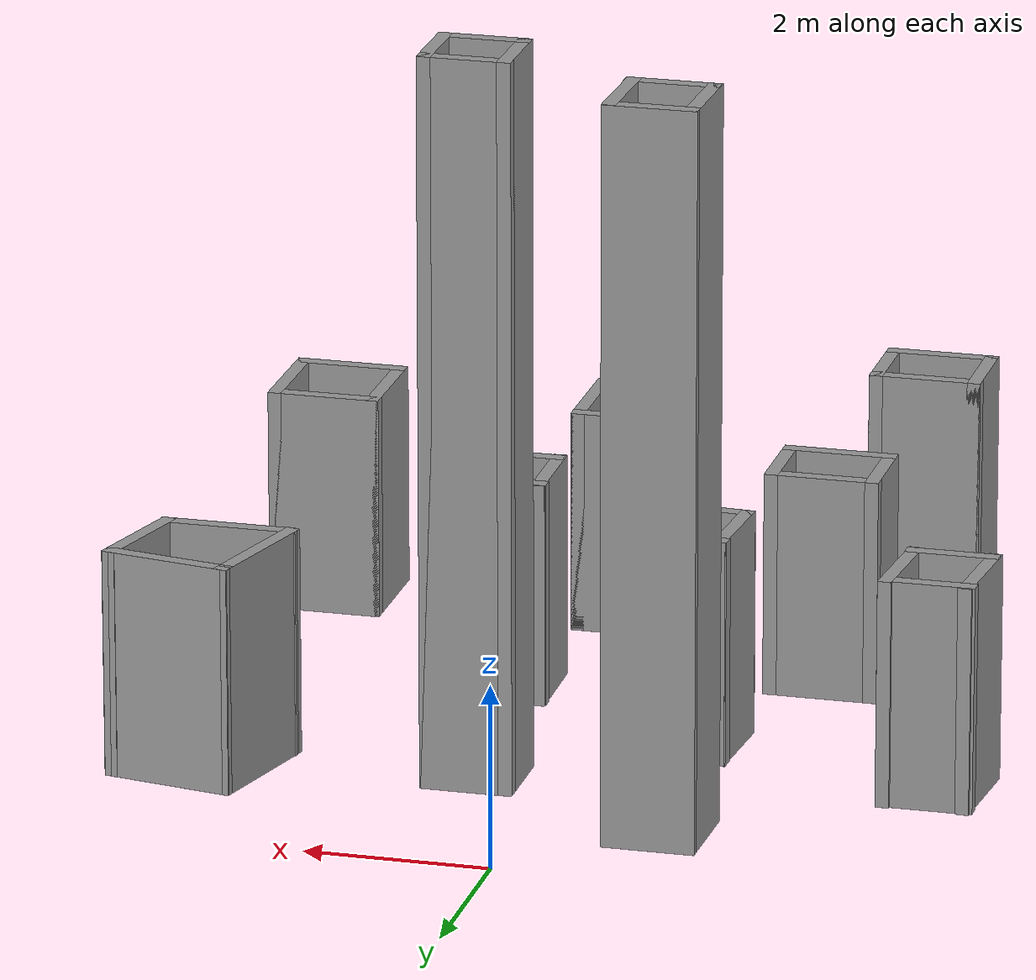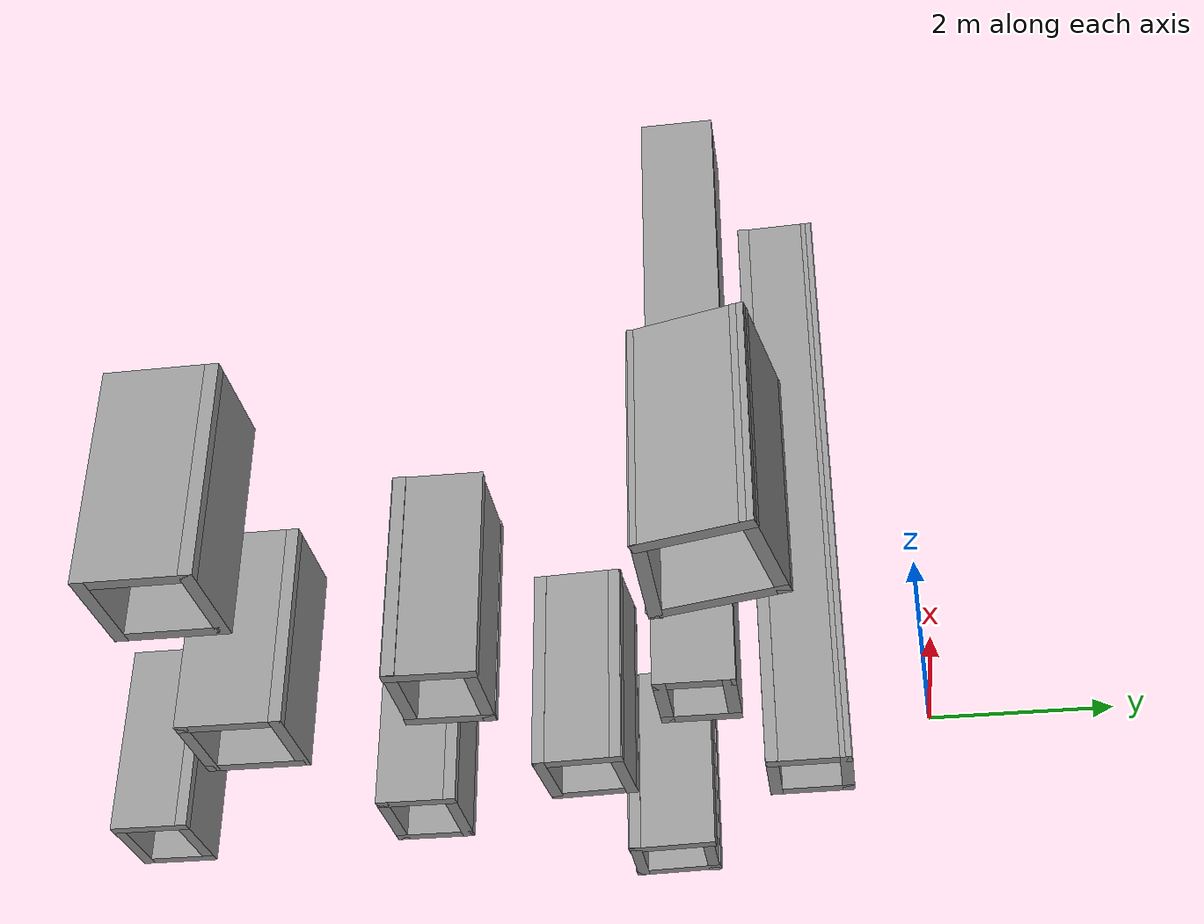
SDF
<?xml version='1.0'?>
<sdf version='1.7'>
  <model name='my_world.world'>
    <pose>0.054354 -5.13393 0 0 -0 0</pose>
    <link name='Wall_0'>
      <collision name='Wall_0_Collision'>
        <geometry>
          <box>
            <size>1 0.15 8</size>
          </box>
        </geometry>
        <pose>0 0 4 0 -0 0</pose>
      </collision>
      <visual name='Wall_0_Visual'>
        <pose>0 0 4 0 -0 0</pose>
        <geometry>
          <box>
            <size>1 0.15 8</size>
          </box>
        </geometry>
        <material>
          <script>
            <uri>file://media/materials/scripts/gazebo.material</uri>
            <name>Gazebo/Grey</name>
          </script>
          <ambient>1 1 1 1</ambient>
        </material>
        <meta>
          <layer>0</layer>
        </meta>
      </visual>
      <pose>-1.49935 3.31393 0 0 -0 0</pose>
    </link>
    <link name='Wall_1'>
      <collision name='Wall_1_Collision'>
        <geometry>
          <box>
            <size>1.01023 0.15 8</size>
          </box>
        </geometry>
        <pose>0 0 4 0 -0 0</pose>
      </collision>
      <visual name='Wall_1_Visual'>
        <pose>0 0 4 0 -0 0</pose>
        <geometry>
          <box>
            <size>1.01023 0.15 8</size>
          </box>
        </geometry>
        <material>
          <script>
            <uri>file://media/materials/scripts/gazebo.material</uri>
            <name>Gazebo/Grey</name>
          </script>
          <ambient>1 1 1 1</ambient>
        </material>
        <meta>
          <layer>0</layer>
        </meta>
      </visual>
      <pose>-1.07435 3.74393 0 0 -0 1.54754</pose>
    </link>
    <link name='Wall_15'>
      <collision name='Wall_15_Collision'>
        <geometry>
          <box>
            <size>1.05777 0.15 2.5</size>
          </box>
        </geometry>
        <pose>0 0 1.25 0 -0 0</pose>
      </collision>
      <visual name='Wall_15_Visual'>
        <pose>0 0 1.25 0 -0 0</pose>
        <geometry>
          <box>
            <size>1.05777 0.15 2.5</size>
          </box>
        </geometry>
        <material>
          <script>
            <uri>file://media/materials/scripts/gazebo.material</uri>
            <name>Gazebo/Grey</name>
          </script>
          <ambient>1 1 1 1</ambient>
        </material>
        <meta>
          <layer>0</layer>
        </meta>
      </visual>
      <pose>-1.64061 1.12835 0 0 -0 -1.64235</pose>
    </link>
    <link name='Wall_16'>
      <collision name='Wall_16_Collision'>
        <geometry>
          <box>
            <size>1.10596 0.15 2.5</size>
          </box>
        </geometry>
        <pose>0 0 1.25 0 -0 0</pose>
      </collision>
      <visual name='Wall_16_Visual'>
        <pose>0 0 1.25 0 -0 0</pose>
        <geometry>
          <box>
            <size>1.10596 0.15 2.5</size>
          </box>
        </geometry>
        <material>
          <script>
            <uri>file://media/materials/scripts/gazebo.material</uri>
            <name>Gazebo/Grey</name>
          </script>
          <ambient>1 1 1 1</ambient>
        </material>
        <meta>
          <layer>0</layer>
        </meta>
      </visual>
      <pose>-1.19618 0.630228 0 0 -0 -0.067889</pose>
    </link>
    <link name='Wall_17'>
      <collision name='Wall_17_Collision'>
        <geometry>
          <box>
            <size>1.06989 0.15 2.5</size>
          </box>
        </geometry>
        <pose>0 0 1.25 0 -0 0</pose>
      </collision>
      <visual name='Wall_17_Visual'>
        <pose>0 0 1.25 0 -0 0</pose>
        <geometry>
          <box>
            <size>1.06989 0.15 2.5</size>
          </box>
        </geometry>
        <material>
          <script>
            <uri>file://media/materials/scripts/gazebo.material</uri>
            <name>Gazebo/Grey</name>
          </script>
          <ambient>1 1 1 1</ambient>
        </material>
        <meta>
          <layer>0</layer>
        </meta>
      </visual>
      <pose>-0.693331 1.06998 0 0 -0 1.51431</pose>
    </link>
    <link name='Wall_18'>
      <collision name='Wall_18_Collision'>
        <geometry>
          <box>
            <size>1.10596 0.15 2.5</size>
          </box>
        </geometry>
        <pose>0 0 1.25 0 -0 0</pose>
      </collision>
      <visual name='Wall_18_Visual'>
        <pose>0 0 1.25 0 -0 0</pose>
        <geometry>
          <box>
            <size>1.10596 0.15 2.5</size>
          </box>
        </geometry>
        <material>
          <script>
            <uri>file://media/materials/scripts/gazebo.material</uri>
            <name>Gazebo/Grey</name>
          </script>
          <ambient>1 1 1 1</ambient>
        </material>
        <meta>
          <layer>0</layer>
        </meta>
      </visual>
      <pose>-1.14424 1.54865 0 0 -0 3.0737</pose>
    </link>
    <link name='Wall_2'>
      <collision name='Wall_2_Collision'>
        <geometry>
          <box>
            <size>1 0.15 8</size>
          </box>
        </geometry>
        <pose>0 0 4 0 -0 0</pose>
      </collision>
      <visual name='Wall_2_Visual'>
        <pose>0 0 4 0 -0 0</pose>
        <geometry>
          <box>
            <size>1 0.15 8</size>
          </box>
        </geometry>
        <material>
          <script>
            <uri>file://media/materials/scripts/gazebo.material</uri>
            <name>Gazebo/Grey</name>
          </script>
          <ambient>1 1 1 1</ambient>
        </material>
        <meta>
          <layer>0</layer>
        </meta>
      </visual>
      <pose>-1.48935 4.18393 0 0 -0 3.14159</pose>
    </link>
    <link name='Wall_20'>
      <collision name='Wall_20_Collision'>
        <geometry>
          <box>
            <size>1.14571 0.15 2.5</size>
          </box>
        </geometry>
        <pose>0 0 1.25 0 -0 0</pose>
      </collision>
      <visual name='Wall_20_Visual'>
        <pose>0 0 1.25 0 -0 0</pose>
        <geometry>
          <box>
            <size>1.14571 0.15 2.5</size>
          </box>
        </geometry>
        <material>
          <script>
            <uri>file://media/materials/scripts/gazebo.material</uri>
            <name>Gazebo/Grey</name>
          </script>
          <ambient>1 1 1 1</ambient>
        </material>
        <meta>
          <layer>0</layer>
        </meta>
      </visual>
      <pose>-4.44976 1.85747 0 0 -0 -1.64903</pose>
    </link>
    <link name='Wall_21'>
      <collision name='Wall_21_Collision'>
        <geometry>
          <box>
            <size>1 0.15 2.5</size>
          </box>
        </geometry>
        <pose>0 0 1.25 0 -0 0</pose>
      </collision>
      <visual name='Wall_21_Visual'>
        <pose>0 0 1.25 0 -0 0</pose>
        <geometry>
          <box>
            <size>1 0.15 2.5</size>
          </box>
        </geometry>
        <material>
          <script>
            <uri>file://media/materials/scripts/gazebo.material</uri>
            <name>Gazebo/Grey</name>
          </script>
          <ambient>1 1 1 1</ambient>
        </material>
        <meta>
          <layer>0</layer>
        </meta>
      </visual>
      <pose>-4.0507 1.37411 0 0 -0 0</pose>
    </link>
    <link name='Wall_22'>
      <collision name='Wall_22_Collision'>
        <geometry>
          <box>
            <size>1.14571 0.15 2.5</size>
          </box>
        </geometry>
        <pose>0 0 1.25 0 -0 0</pose>
      </collision>
      <visual name='Wall_22_Visual'>
        <pose>0 0 1.25 0 -0 0</pose>
        <geometry>
          <box>
            <size>1.14571 0.15 2.5</size>
          </box>
        </geometry>
        <material>
          <script>
            <uri>file://media/materials/scripts/gazebo.material</uri>
            <name>Gazebo/Grey</name>
          </script>
          <ambient>1 1 1 1</ambient>
        </material>
        <meta>
          <layer>0</layer>
        </meta>
      </visual>
      <pose>-3.59976 1.85747 0 0 -0 1.49256</pose>
    </link>
    <link name='Wall_23'>
      <collision name='Wall_23_Collision'>
        <geometry>
          <box>
            <size>1 0.15 2.5</size>
          </box>
        </geometry>
        <pose>0 0 1.25 0 -0 0</pose>
      </collision>
      <visual name='Wall_23_Visual'>
        <pose>0 0 1.25 0 -0 0</pose>
        <geometry>
          <box>
            <size>1 0.15 2.5</size>
          </box>
        </geometry>
        <material>
          <script>
            <uri>file://media/materials/scripts/gazebo.material</uri>
            <name>Gazebo/Grey</name>
          </script>
          <ambient>1 1 1 1</ambient>
        </material>
        <meta>
          <layer>0</layer>
        </meta>
      </visual>
      <pose>-4.01179 2.32787 0 0 -0 3.14159</pose>
    </link>
    <link name='Wall_25'>
      <collision name='Wall_25_Collision'>
        <geometry>
          <box>
            <size>1.04615 0.15 2.5</size>
          </box>
        </geometry>
        <pose>0 0 1.25 0 -0 0</pose>
      </collision>
      <visual name='Wall_25_Visual'>
        <pose>0 0 1.25 0 -0 0</pose>
        <geometry>
          <box>
            <size>1.04615 0.15 2.5</size>
          </box>
        </geometry>
        <material>
          <script>
            <uri>file://media/materials/scripts/gazebo.material</uri>
            <name>Gazebo/Grey</name>
          </script>
          <ambient>1 1 1 1</ambient>
        </material>
        <meta>
          <layer>0</layer>
        </meta>
      </visual>
      <pose>0.692776 -0.156425 0 0 -0 -1.55632</pose>
    </link>
    <link name='Wall_256'>
      <collision name='Wall_256_Collision'>
        <geometry>
          <box>
            <size>1.5 0.15 2.5</size>
          </box>
        </geometry>
        <pose>0 0 1.25 0 -0 0</pose>
      </collision>
      <visual name='Wall_256_Visual'>
        <pose>0 0 1.25 0 -0 0</pose>
        <geometry>
          <box>
            <size>1.5 0.15 2.5</size>
          </box>
        </geometry>
        <material>
          <script>
            <uri>file://media/materials/scripts/gazebo.material</uri>
            <name>Gazebo/Grey</name>
          </script>
          <ambient>1 1 1 1</ambient>
        </material>
        <meta>
          <layer>0</layer>
        </meta>
      </visual>
      <pose>3.01745 3.05245 0 0 -0 -1.8326</pose>
    </link>
    <link name='Wall_257'>
      <collision name='Wall_257_Collision'>
        <geometry>
          <box>
            <size>1.5 0.15 2.5</size>
          </box>
        </geometry>
        <pose>0 0 1.25 0 -0 0</pose>
      </collision>
      <visual name='Wall_257_Visual'>
        <pose>0 0 1.25 0 -0 0</pose>
        <geometry>
          <box>
            <size>1.5 0.15 2.5</size>
          </box>
        </geometry>
        <material>
          <script>
            <uri>file://media/materials/scripts/gazebo.material</uri>
            <name>Gazebo/Grey</name>
          </script>
          <ambient>1 1 1 1</ambient>
        </material>
        <meta>
          <layer>0</layer>
        </meta>
      </visual>
      <pose>3.51775 2.40045 0 0 -0 0</pose>
    </link>
    <link name='Wall_258'>
      <collision name='Wall_258_Collision'>
        <geometry>
          <box>
            <size>1.25 0.15 2.5</size>
          </box>
        </geometry>
        <pose>0 0 1.25 0 -0 0</pose>
      </collision>
      <visual name='Wall_258_Visual'>
        <pose>0 0 1.25 0 -0 0</pose>
        <geometry>
          <box>
            <size>1.25 0.15 2.5</size>
          </box>
        </geometry>
        <material>
          <script>
            <uri>file://media/materials/scripts/gazebo.material</uri>
            <name>Gazebo/Grey</name>
          </script>
          <ambient>1 1 1 1</ambient>
        </material>
        <meta>
          <layer>0</layer>
        </meta>
      </visual>
      <pose>4.3351 2.93171 0 0 -0 1.309</pose>
    </link>
    <link name='Wall_259'>
      <collision name='Wall_259_Collision'>
        <geometry>
          <box>
            <size>1.45778 0.15 2.5</size>
          </box>
        </geometry>
        <pose>0 0 1.25 0 -0 0</pose>
      </collision>
      <visual name='Wall_259_Visual'>
        <pose>0 0 1.25 0 -0 0</pose>
        <geometry>
          <box>
            <size>1.45778 0.15 2.5</size>
          </box>
        </geometry>
        <material>
          <script>
            <uri>file://media/materials/scripts/gazebo.material</uri>
            <name>Gazebo/Grey</name>
          </script>
          <ambient>1 1 1 1</ambient>
        </material>
        <meta>
          <layer>0</layer>
        </meta>
      </visual>
      <pose>3.8348 3.58371 0 0 -0 2.95588</pose>
    </link>
    <link name='Wall_26'>
      <collision name='Wall_26_Collision'>
        <geometry>
          <box>
            <size>1.25 0.15 2.5</size>
          </box>
        </geometry>
        <pose>0 0 1.25 0 -0 0</pose>
      </collision>
      <visual name='Wall_26_Visual'>
        <pose>0 0 1.25 0 -0 0</pose>
        <geometry>
          <box>
            <size>1.25 0.15 2.5</size>
          </box>
        </geometry>
        <material>
          <script>
            <uri>file://media/materials/scripts/gazebo.material</uri>
            <name>Gazebo/Grey</name>
          </script>
          <ambient>1 1 1 1</ambient>
        </material>
        <meta>
          <layer>0</layer>
        </meta>
      </visual>
      <pose>1.26223 -0.591484 0 0 -0 0</pose>
    </link>
    <link name='Wall_27'>
      <collision name='Wall_27_Collision'>
        <geometry>
          <box>
            <size>1.04615 0.15 2.5</size>
          </box>
        </geometry>
        <pose>0 0 1.25 0 -0 0</pose>
      </collision>
      <visual name='Wall_27_Visual'>
        <pose>0 0 1.25 0 -0 0</pose>
        <geometry>
          <box>
            <size>1.04615 0.15 2.5</size>
          </box>
        </geometry>
        <material>
          <script>
            <uri>file://media/materials/scripts/gazebo.material</uri>
            <name>Gazebo/Grey</name>
          </script>
          <ambient>1 1 1 1</ambient>
        </material>
        <meta>
          <layer>0</layer>
        </meta>
      </visual>
      <pose>1.79278 -0.156425 0 0 -0 1.58527</pose>
    </link>
    <link name='Wall_28'>
      <collision name='Wall_28_Collision'>
        <geometry>
          <box>
            <size>1.25 0.15 2.5</size>
          </box>
        </geometry>
        <pose>0 0 1.25 0 -0 0</pose>
      </collision>
      <visual name='Wall_28_Visual'>
        <pose>0 0 1.25 0 -0 0</pose>
        <geometry>
          <box>
            <size>1.25 0.15 2.5</size>
          </box>
        </geometry>
        <material>
          <script>
            <uri>file://media/materials/scripts/gazebo.material</uri>
            <name>Gazebo/Grey</name>
          </script>
          <ambient>1 1 1 1</ambient>
        </material>
        <meta>
          <layer>0</layer>
        </meta>
      </visual>
      <pose>1.22332 0.278633 0 0 -0 3.14159</pose>
    </link>
    <link name='Wall_3'>
      <collision name='Wall_3_Collision'>
        <geometry>
          <box>
            <size>1.01023 0.15 8</size>
          </box>
        </geometry>
        <pose>0 0 4 0 -0 0</pose>
      </collision>
      <visual name='Wall_3_Visual'>
        <pose>0 0 4 0 -0 0</pose>
        <geometry>
          <box>
            <size>1.01023 0.15 8</size>
          </box>
        </geometry>
        <material>
          <script>
            <uri>file://media/materials/scripts/gazebo.material</uri>
            <name>Gazebo/Grey</name>
          </script>
          <ambient>1 1 1 1</ambient>
        </material>
        <meta>
          <layer>0</layer>
        </meta>
      </visual>
      <pose>-1.92435 3.74393 0 0 -0 -1.59405</pose>
    </link>
    <link name='Wall_35'>
      <collision name='Wall_35_Collision'>
        <geometry>
          <box>
            <size>1 0.15 2.5</size>
          </box>
        </geometry>
        <pose>0 0 1.25 0 -0 0</pose>
      </collision>
      <visual name='Wall_35_Visual'>
        <pose>0 0 1.25 0 -0 0</pose>
        <geometry>
          <box>
            <size>1 0.15 2.5</size>
          </box>
        </geometry>
        <material>
          <script>
            <uri>file://media/materials/scripts/gazebo.material</uri>
            <name>Gazebo/Grey</name>
          </script>
          <ambient>1 1 1 1</ambient>
        </material>
        <meta>
          <layer>0</layer>
        </meta>
      </visual>
      <pose>-2.73774 -1.09316 0 0 -0 -1.5708</pose>
    </link>
    <link name='Wall_36'>
      <collision name='Wall_36_Collision'>
        <geometry>
          <box>
            <size>1.25 0.15 2.5</size>
          </box>
        </geometry>
        <pose>0 0 1.25 0 -0 0</pose>
      </collision>
      <visual name='Wall_36_Visual'>
        <pose>0 0 1.25 0 -0 0</pose>
        <geometry>
          <box>
            <size>1.25 0.15 2.5</size>
          </box>
        </geometry>
        <material>
          <script>
            <uri>file://media/materials/scripts/gazebo.material</uri>
            <name>Gazebo/Grey</name>
          </script>
          <ambient>1 1 1 1</ambient>
        </material>
        <meta>
          <layer>0</layer>
        </meta>
      </visual>
      <pose>-2.18774 -1.51816 0 0 -0 0</pose>
    </link>
    <link name='Wall_37'>
      <collision name='Wall_37_Collision'>
        <geometry>
          <box>
            <size>1 0.15 2.5</size>
          </box>
        </geometry>
        <pose>0 0 1.25 0 -0 0</pose>
      </collision>
      <visual name='Wall_37_Visual'>
        <pose>0 0 1.25 0 -0 0</pose>
        <geometry>
          <box>
            <size>1 0.15 2.5</size>
          </box>
        </geometry>
        <material>
          <script>
            <uri>file://media/materials/scripts/gazebo.material</uri>
            <name>Gazebo/Grey</name>
          </script>
          <ambient>1 1 1 1</ambient>
        </material>
        <meta>
          <layer>0</layer>
        </meta>
      </visual>
      <pose>-1.63774 -1.09316 0 0 -0 1.5708</pose>
    </link>
    <link name='Wall_38'>
      <collision name='Wall_38_Collision'>
        <geometry>
          <box>
            <size>1.25 0.15 2.5</size>
          </box>
        </geometry>
        <pose>0 0 1.25 0 -0 0</pose>
      </collision>
      <visual name='Wall_38_Visual'>
        <pose>0 0 1.25 0 -0 0</pose>
        <geometry>
          <box>
            <size>1.25 0.15 2.5</size>
          </box>
        </geometry>
        <material>
          <script>
            <uri>file://media/materials/scripts/gazebo.material</uri>
            <name>Gazebo/Grey</name>
          </script>
          <ambient>1 1 1 1</ambient>
        </material>
        <meta>
          <layer>0</layer>
        </meta>
      </visual>
      <pose>-2.18774 -0.668165 0 0 -0 3.14159</pose>
    </link>
    <link name='Wall_40'>
      <collision name='Wall_40_Collision'>
        <geometry>
          <box>
            <size>1.25 0.15 2.5</size>
          </box>
        </geometry>
        <pose>0 0 1.25 0 -0 0</pose>
      </collision>
      <visual name='Wall_40_Visual'>
        <pose>0 0 1.25 0 -0 0</pose>
        <geometry>
          <box>
            <size>1.25 0.15 2.5</size>
          </box>
        </geometry>
        <material>
          <script>
            <uri>file://media/materials/scripts/gazebo.material</uri>
            <name>Gazebo/Grey</name>
          </script>
          <ambient>1 1 1 1</ambient>
        </material>
        <meta>
          <layer>0</layer>
        </meta>
      </visual>
      <pose>-0.234566 -2.67079 0 0 -0 -1.5708</pose>
    </link>
    <link name='Wall_41'>
      <collision name='Wall_41_Collision'>
        <geometry>
          <box>
            <size>1.25 0.15 2.5</size>
          </box>
        </geometry>
        <pose>0 0 1.25 0 -0 0</pose>
      </collision>
      <visual name='Wall_41_Visual'>
        <pose>0 0 1.25 0 -0 0</pose>
        <geometry>
          <box>
            <size>1.25 0.15 2.5</size>
          </box>
        </geometry>
        <material>
          <script>
            <uri>file://media/materials/scripts/gazebo.material</uri>
            <name>Gazebo/Grey</name>
          </script>
          <ambient>1 1 1 1</ambient>
        </material>
        <meta>
          <layer>0</layer>
        </meta>
      </visual>
      <pose>0.315434 -3.22079 0 0 -0 0</pose>
    </link>
    <link name='Wall_42'>
      <collision name='Wall_42_Collision'>
        <geometry>
          <box>
            <size>1.25 0.15 2.5</size>
          </box>
        </geometry>
        <pose>0 0 1.25 0 -0 0</pose>
      </collision>
      <visual name='Wall_42_Visual'>
        <pose>0 0 1.25 0 -0 0</pose>
        <geometry>
          <box>
            <size>1.25 0.15 2.5</size>
          </box>
        </geometry>
        <material>
          <script>
            <uri>file://media/materials/scripts/gazebo.material</uri>
            <name>Gazebo/Grey</name>
          </script>
          <ambient>1 1 1 1</ambient>
        </material>
        <meta>
          <layer>0</layer>
        </meta>
      </visual>
      <pose>0.865434 -2.67079 0 0 -0 1.5708</pose>
    </link>
    <link name='Wall_43'>
      <collision name='Wall_43_Collision'>
        <geometry>
          <box>
            <size>1.25 0.15 2.5</size>
          </box>
        </geometry>
        <pose>0 0 1.25 0 -0 0</pose>
      </collision>
      <visual name='Wall_43_Visual'>
        <pose>0 0 1.25 0 -0 0</pose>
        <geometry>
          <box>
            <size>1.25 0.15 2.5</size>
          </box>
        </geometry>
        <material>
          <script>
            <uri>file://media/materials/scripts/gazebo.material</uri>
            <name>Gazebo/Grey</name>
          </script>
          <ambient>1 1 1 1</ambient>
        </material>
        <meta>
          <layer>0</layer>
        </meta>
      </visual>
      <pose>0.315434 -2.12079 0 0 -0 3.14159</pose>
    </link>
    <link name='Wall_45'>
      <collision name='Wall_45_Collision'>
        <geometry>
          <box>
            <size>1.25 0.15 2.5</size>
          </box>
        </geometry>
        <pose>0 0 1.25 0 -0 0</pose>
      </collision>
      <visual name='Wall_45_Visual'>
        <pose>0 0 1.25 0 -0 0</pose>
        <geometry>
          <box>
            <size>1.25 0.15 2.5</size>
          </box>
        </geometry>
        <material>
          <script>
            <uri>file://media/materials/scripts/gazebo.material</uri>
            <name>Gazebo/Grey</name>
          </script>
          <ambient>1 1 1 1</ambient>
        </material>
        <meta>
          <layer>0</layer>
        </meta>
      </visual>
      <pose>3.15056 -2.54109 0 0 -0 -1.5708</pose>
    </link>
    <link name='Wall_46'>
      <collision name='Wall_46_Collision'>
        <geometry>
          <box>
            <size>1.25 0.15 2.5</size>
          </box>
        </geometry>
        <pose>0 0 1.25 0 -0 0</pose>
      </collision>
      <visual name='Wall_46_Visual'>
        <pose>0 0 1.25 0 -0 0</pose>
        <geometry>
          <box>
            <size>1.25 0.15 2.5</size>
          </box>
        </geometry>
        <material>
          <script>
            <uri>file://media/materials/scripts/gazebo.material</uri>
            <name>Gazebo/Grey</name>
          </script>
          <ambient>1 1 1 1</ambient>
        </material>
        <meta>
          <layer>0</layer>
        </meta>
      </visual>
      <pose>3.70056 -3.09109 0 0 -0 0</pose>
    </link>
    <link name='Wall_47'>
      <collision name='Wall_47_Collision'>
        <geometry>
          <box>
            <size>1.25 0.15 2.5</size>
          </box>
        </geometry>
        <pose>0 0 1.25 0 -0 0</pose>
      </collision>
      <visual name='Wall_47_Visual'>
        <pose>0 0 1.25 0 -0 0</pose>
        <geometry>
          <box>
            <size>1.25 0.15 2.5</size>
          </box>
        </geometry>
        <material>
          <script>
            <uri>file://media/materials/scripts/gazebo.material</uri>
            <name>Gazebo/Grey</name>
          </script>
          <ambient>1 1 1 1</ambient>
        </material>
        <meta>
          <layer>0</layer>
        </meta>
      </visual>
      <pose>4.25056 -2.54109 0 0 -0 1.5708</pose>
    </link>
    <link name='Wall_48'>
      <collision name='Wall_48_Collision'>
        <geometry>
          <box>
            <size>1.25 0.15 2.5</size>
          </box>
        </geometry>
        <pose>0 0 1.25 0 -0 0</pose>
      </collision>
      <visual name='Wall_48_Visual'>
        <pose>0 0 1.25 0 -0 0</pose>
        <geometry>
          <box>
            <size>1.25 0.15 2.5</size>
          </box>
        </geometry>
        <material>
          <script>
            <uri>file://media/materials/scripts/gazebo.material</uri>
            <name>Gazebo/Grey</name>
          </script>
          <ambient>1 1 1 1</ambient>
        </material>
        <meta>
          <layer>0</layer>
        </meta>
      </visual>
      <pose>3.70056 -1.99109 0 0 -0 3.14159</pose>
    </link>
    <link name='Wall_5'>
      <collision name='Wall_5_Collision'>
        <geometry>
          <box>
            <size>0.91 0.15 8</size>
          </box>
        </geometry>
        <pose>0 0 4 0 -0 0</pose>
      </collision>
      <visual name='Wall_5_Visual'>
        <pose>0 0 4 0 -0 0</pose>
        <geometry>
          <box>
            <size>0.91 0.15 8</size>
          </box>
        </geometry>
        <material>
          <script>
            <uri>file://media/materials/scripts/gazebo.material</uri>
            <name>Gazebo/Grey</name>
          </script>
          <ambient>1 1 1 1</ambient>
        </material>
        <meta>
          <layer>0</layer>
        </meta>
      </visual>
      <pose>0.335646 2.62393 0 0 -0 -1.5708</pose>
    </link>
    <link name='Wall_51'>
      <collision name='Wall_51_Collision'>
        <geometry>
          <box>
            <size>1 0.15 2.5</size>
          </box>
        </geometry>
        <pose>0 0 1.25 0 -0 0</pose>
      </collision>
      <visual name='Wall_51_Visual'>
        <pose>0 0 1.25 0 -0 0</pose>
        <geometry>
          <box>
            <size>1 0.15 2.5</size>
          </box>
        </geometry>
        <material>
          <script>
            <uri>file://media/materials/scripts/gazebo.material</uri>
            <name>Gazebo/Grey</name>
          </script>
          <ambient>1 1 1 1</ambient>
        </material>
        <meta>
          <layer>0</layer>
        </meta>
      </visual>
      <pose>-3.08793 -4.63393 0 0 -0 -1.5708</pose>
    </link>
    <link name='Wall_52'>
      <collision name='Wall_52_Collision'>
        <geometry>
          <box>
            <size>1.25 0.15 2.5</size>
          </box>
        </geometry>
        <pose>0 0 1.25 0 -0 0</pose>
      </collision>
      <visual name='Wall_52_Visual'>
        <pose>0 0 1.25 0 -0 0</pose>
        <geometry>
          <box>
            <size>1.25 0.15 2.5</size>
          </box>
        </geometry>
        <material>
          <script>
            <uri>file://media/materials/scripts/gazebo.material</uri>
            <name>Gazebo/Grey</name>
          </script>
          <ambient>1 1 1 1</ambient>
        </material>
        <meta>
          <layer>0</layer>
        </meta>
      </visual>
      <pose>-2.53793 -5.05893 0 0 -0 0</pose>
    </link>
    <link name='Wall_53'>
      <collision name='Wall_53_Collision'>
        <geometry>
          <box>
            <size>1 0.15 2.5</size>
          </box>
        </geometry>
        <pose>0 0 1.25 0 -0 0</pose>
      </collision>
      <visual name='Wall_53_Visual'>
        <pose>0 0 1.25 0 -0 0</pose>
        <geometry>
          <box>
            <size>1 0.15 2.5</size>
          </box>
        </geometry>
        <material>
          <script>
            <uri>file://media/materials/scripts/gazebo.material</uri>
            <name>Gazebo/Grey</name>
          </script>
          <ambient>1 1 1 1</ambient>
        </material>
        <meta>
          <layer>0</layer>
        </meta>
      </visual>
      <pose>-1.98793 -4.63393 0 0 -0 1.5708</pose>
    </link>
    <link name='Wall_54'>
      <collision name='Wall_54_Collision'>
        <geometry>
          <box>
            <size>1.25 0.15 2.5</size>
          </box>
        </geometry>
        <pose>0 0 1.25 0 -0 0</pose>
      </collision>
      <visual name='Wall_54_Visual'>
        <pose>0 0 1.25 0 -0 0</pose>
        <geometry>
          <box>
            <size>1.25 0.15 2.5</size>
          </box>
        </geometry>
        <material>
          <script>
            <uri>file://media/materials/scripts/gazebo.material</uri>
            <name>Gazebo/Grey</name>
          </script>
          <ambient>1 1 1 1</ambient>
        </material>
        <meta>
          <layer>0</layer>
        </meta>
      </visual>
      <pose>-2.53793 -4.20893 0 0 -0 3.14159</pose>
    </link>
    <link name='Wall_6'>
      <collision name='Wall_6_Collision'>
        <geometry>
          <box>
            <size>1 0.15 8</size>
          </box>
        </geometry>
        <pose>0 0 4 0 -0 0</pose>
      </collision>
      <visual name='Wall_6_Visual'>
        <pose>0 0 4 0 -0 0</pose>
        <geometry>
          <box>
            <size>1 0.15 8</size>
          </box>
        </geometry>
        <material>
          <script>
            <uri>file://media/materials/scripts/gazebo.material</uri>
            <name>Gazebo/Grey</name>
          </script>
          <ambient>1 1 1 1</ambient>
        </material>
        <meta>
          <layer>0</layer>
        </meta>
      </visual>
      <pose>0.760646 2.24393 0 0 -0 0</pose>
    </link>
    <link name='Wall_7'>
      <collision name='Wall_7_Collision'>
        <geometry>
          <box>
            <size>0.91 0.15 8</size>
          </box>
        </geometry>
        <pose>0 0 4 0 -0 0</pose>
      </collision>
      <visual name='Wall_7_Visual'>
        <pose>0 0 4 0 -0 0</pose>
        <geometry>
          <box>
            <size>0.91 0.15 8</size>
          </box>
        </geometry>
        <material>
          <script>
            <uri>file://media/materials/scripts/gazebo.material</uri>
            <name>Gazebo/Grey</name>
          </script>
          <ambient>1 1 1 1</ambient>
        </material>
        <meta>
          <layer>0</layer>
        </meta>
      </visual>
      <pose>1.18565 2.62393 0 0 -0 1.5708</pose>
    </link>
    <link name='Wall_8'>
      <collision name='Wall_8_Collision'>
        <geometry>
          <box>
            <size>1 0.15 8</size>
          </box>
        </geometry>
        <pose>0 0 4 0 -0 0</pose>
      </collision>
      <visual name='Wall_8_Visual'>
        <pose>0 0 4 0 -0 0</pose>
        <geometry>
          <box>
            <size>1 0.15 8</size>
          </box>
        </geometry>
        <material>
          <script>
            <uri>file://media/materials/scripts/gazebo.material</uri>
            <name>Gazebo/Grey</name>
          </script>
          <ambient>1 1 1 1</ambient>
        </material>
        <meta>
          <layer>0</layer>
        </meta>
      </visual>
      <pose>0.760646 3.00393 0 0 -0 3.14159</pose>
    </link>
    <static>1</static>
  </model>
</sdf>
